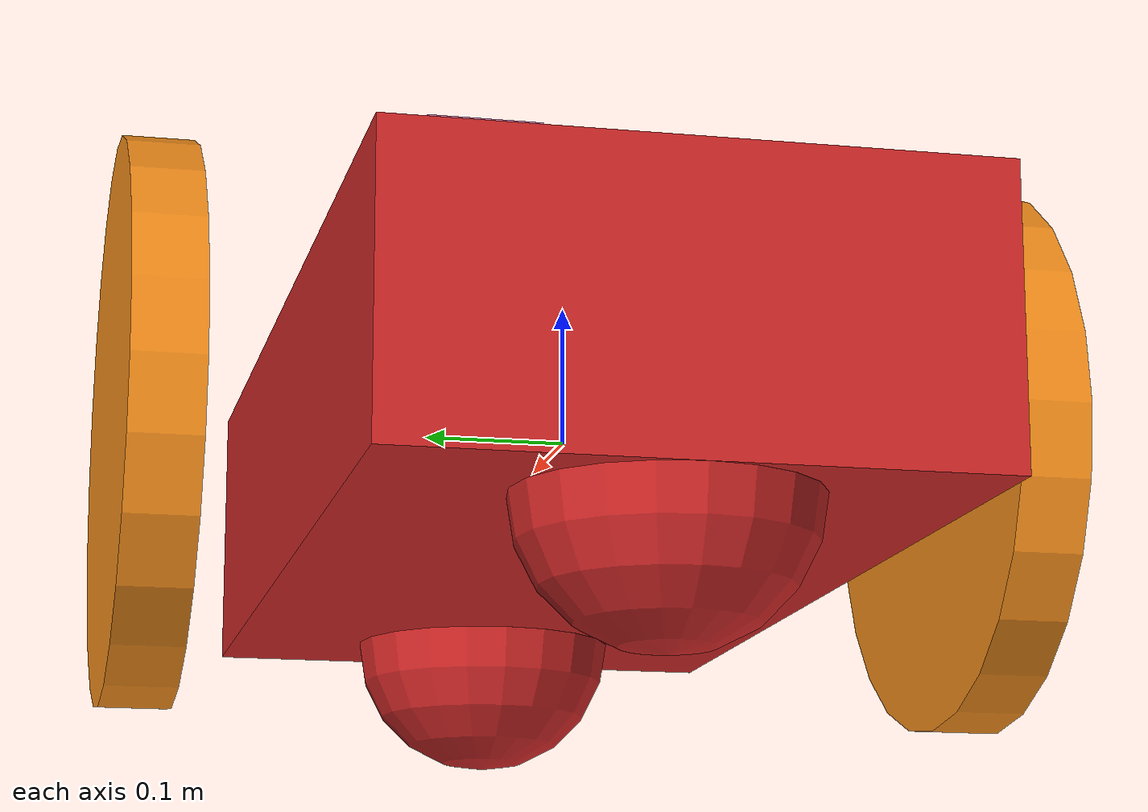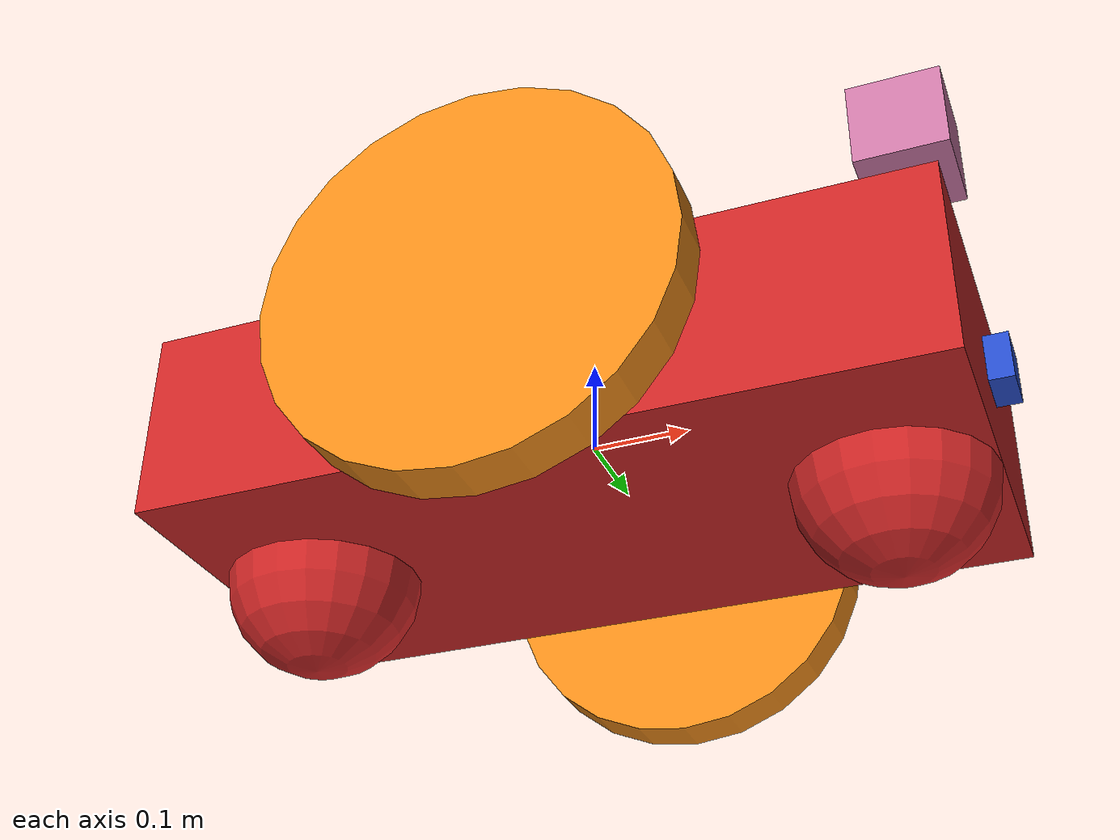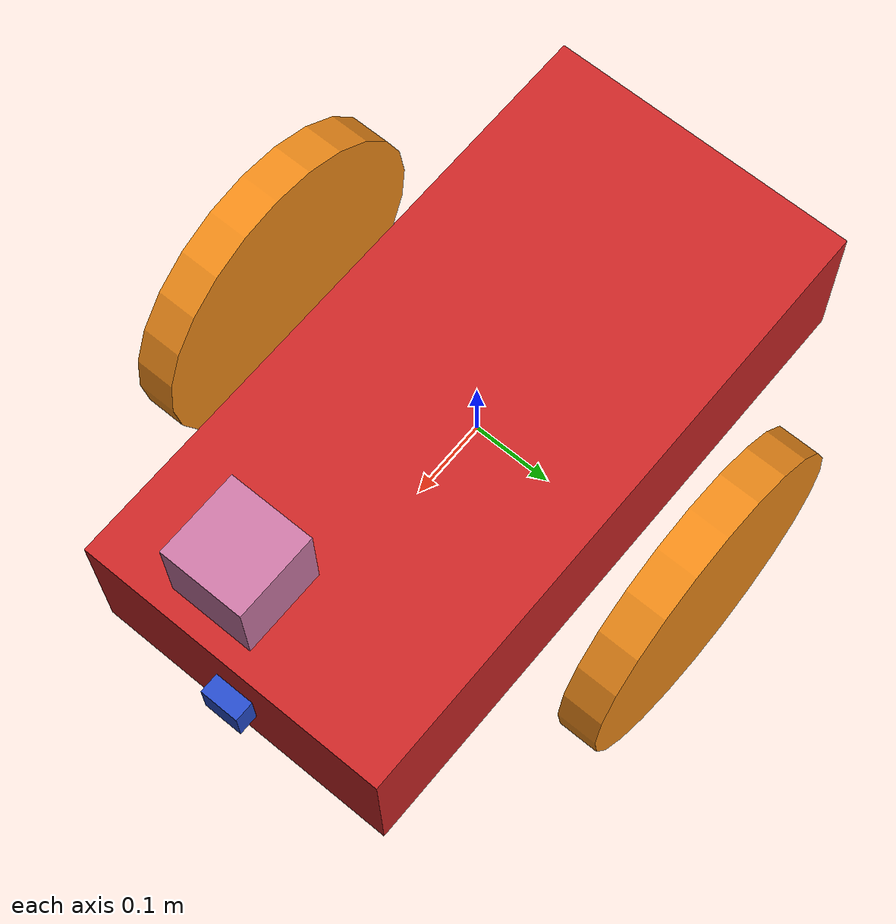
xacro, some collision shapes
<robot name="my_robot" xmlns:xacro="http://www.ros.org/wiki/xacro">

    <xacro:include filename="$(find av_robot)/urdf/robot.gazebo" />

    <link name="robot_footprint"></link>

    <joint name="robot_footprint_joint" type="fixed">
        <origin xyz="0 0 0" rpy="0 0 0" />
        <parent link="robot_footprint"/>
        <child link="chassis" />
    </joint>

    <joint name="left_wheel_hinge" type="continuous">
        <origin xyz="0 0.3 0" rpy="0 0 0"/>
        <child link="left_wheel"/>
        <parent link="chassis"/>
        <axis xyz="0 1 0" rpy="0 0 0"/>
        <limit effort="10000" velocity="1000"/>
        <dynamics damping="1.0" friction="1.0"/>

    </joint>

    <joint name="right_wheel_hinge" type="continuous">
        <origin xyz="0 -0.3 0" rpy="0 0 0"/>
        <child link="right_wheel"/>
        <parent link="chassis"/>
        <axis xyz="0 1 0" rpy="0 0 0"/>
        <limit effort="10000" velocity="1000"/>
        <dynamics damping="1.0" friction="1.0"/>
    </joint>

    <joint name="camera_joint" type="fixed">
        <origin xyz="0.4 0 0" rpy="0 0 0"/>
        <parent link="chassis"/>
        <child link="camera"/>
        <axis xyz="0 1 0" rpy="0 0 0"/>
    </joint>

    <joint name="camera_optical_joint" type="fixed">
        <origin xyz="0 0 0" rpy="-1.5707 0 -1.5707"/>
        <parent link="camera"/>
        <child link="camera_link_optical"/>
    </joint>

    <joint name="hokuyo_joint" type="fixed">
        <origin xyz="0.35 0 0.3" rpy="0 0 0"/>
        <parent link="chassis"/>
        <child link="hokuyo"/>
        <axis xyz="0 1 0" rpy="0 0 0"/>

        <gazebo reference="right_wheel">
            <material>Gazebo/Green</material>
        </gazebo>
    </joint>

    <link name="camera_link_optical">
    </link>

    <link name='chassis'>
        <pose>0 0 0.1 0 0 0</pose>

        <inertial>
            <mass value="15.0"/>
            <origin xyz="0.0 0 0" rpy=" 0 0 0"/>
            <inertia
                    ixx="0.1" ixy="0" ixz="0"
                    iyy="0.1" iyz="0"
                    izz="0.1"
            />
        </inertial>

        <collision name='collision'>
            <origin xyz="0 0 0" rpy=" 0 0 0"/>
            <geometry>
                <box size=".8 .4 .2"/>
            </geometry>
        </collision>

        <visual name='chassis_visual'>
            <origin xyz="0 0 0" rpy=" 0 0 0"/>
            <geometry>
                <box size=".8 .4 .2"/>
            </geometry>
        </visual>

        <collision name='back_caster_collision'>
            <origin xyz="-0.3 0 -0.1" rpy=" 0 0 0"/>
            <geometry>
                <sphere radius="0.099"/>
            </geometry>
        </collision>

        <visual name='back_caster_visual'>
            <origin xyz="-0.3 0 -0.1" rpy=" 0 0 0"/>
            <geometry>
                <sphere radius="0.1"/>
            </geometry>
        </visual>

        <collision name='front_caster_collision'>
            <origin xyz="0.3 0 -0.1" rpy=" 0 0 0"/>
            <geometry>
                <sphere radius="0.099"/>
            </geometry>
        </collision>

        <visual name='front_caster_visual'>
            <origin xyz="0.3 0 -0.1" rpy=" 0 0 0"/>
            <geometry>
                <sphere radius="0.1"/>
            </geometry>
        </visual>

    </link>

    <link name='left_wheel'>

        <inertial>
            <mass value="0.5"/>
            <origin xyz="0 0 0" rpy="0 1.5707 1.5707"/>
            <inertia
                    ixx="0.1" ixy="0" ixz="0"
                    iyy="0.1" iyz="0"
                    izz="0.1"
            />
        </inertial>

        <collision name='left_wheel_collision'>
            <origin xyz="0 0 0" rpy="0 1.5707 1.5707"/>
            <geometry>
                <cylinder radius="0.2" length="0.05"/>
            </geometry>
        </collision>

        <visual name='left_wheel_visual'>
            <origin xyz="0 0 0" rpy="0 1.5707 1.5707"/>
            <geometry>
                <cylinder radius="0.2" length="0.05"/>
            </geometry>
        </visual>

    </link>

    <link name='right_wheel'>

        <inertial>
            <mass value="0.5"/>
            <origin xyz="0 0 0" rpy="0 1.5707 1.5707"/>
            <inertia
                    ixx="0.1" ixy="0" ixz="0"
                    iyy="0.1" iyz="0"
                    izz="0.1"
            />
        </inertial>

        <collision name='right_wheel_collision'>
            <origin xyz="0 0 0" rpy="0 1.5707 1.5707"/>
            <geometry>
                <cylinder radius="0.2" length="0.05"/>
            </geometry>
        </collision>

        <visual name='right_wheel_visual'>
            <origin xyz="0 0 0" rpy="0 1.5707 1.5707"/>
            <geometry>
                <cylinder radius="0.2" length="0.05"/>
            </geometry>
        </visual>

    </link>

    <link name="camera">
        <inertial>
            <mass value="0.1"/>
            <origin xyz="0 0 0" rpy="0 0 0"/>
            <inertia
                    ixx="1e-6" ixy="0" ixz="0" iyy="1e-6" iyz="0" izz="1e-6"
            />
            <box_inertia m="0.1" x="0.05" y="0.05" z="0.05"/>
        </inertial>

        <collision name="camera_collision">
            <origin xyz="0 0 0" rpy="0 0 0"/>
            <geometry>
                <box size="0.05 0.05 0.05"/>
            </geometry>

        </collision>

        <visual name="camera_visual">
            <origin xyz="0 0 0" rpy="0 0 0"/>
            <geometry>
                <box size="0.05 0.05 0.05"/>
            </geometry>
        </visual>
    </link>

    <link name="hokuyo">
        <inertial>
            <mass value="1e-5"/>
            <origin xyz="0 0 0" rpy="0 0 0"/>
            <inertia
                    ixx="1e-6" ixy="0" ixz="0" iyy="1e-6" iyz="0" izz="1e-6"
            />
        </inertial>

        <collision name="hokuyo_collision">
            <origin xyz="0 0 0" rpy="0 0 0"/>
            <geometry>
                <box size="0.1 0.1 0.1"/>
            </geometry>

        </collision>

        <visual name="hokuyo_visual">
            <origin xyz="0 0 0" rpy="0 0 0"/>
            <geometry>
                <mesh filename = "package://av_robot/meshes/hokuyo.dae"/>
            </geometry>
        </visual>

    </link>

    <gazebo reference="left_wheel">
        <material>Gazebo/Orange</material>
    </gazebo>

    <gazebo reference="right_wheel">
        <material>Gazebo/Orange</material>
    </gazebo>

    <gazebo reference="chassis">
        <material>Gazebo/Red</material>
    </gazebo>

    <gazebo reference="camera">
        <material>Gazebo/Blue</material>
    </gazebo>
</robot>
